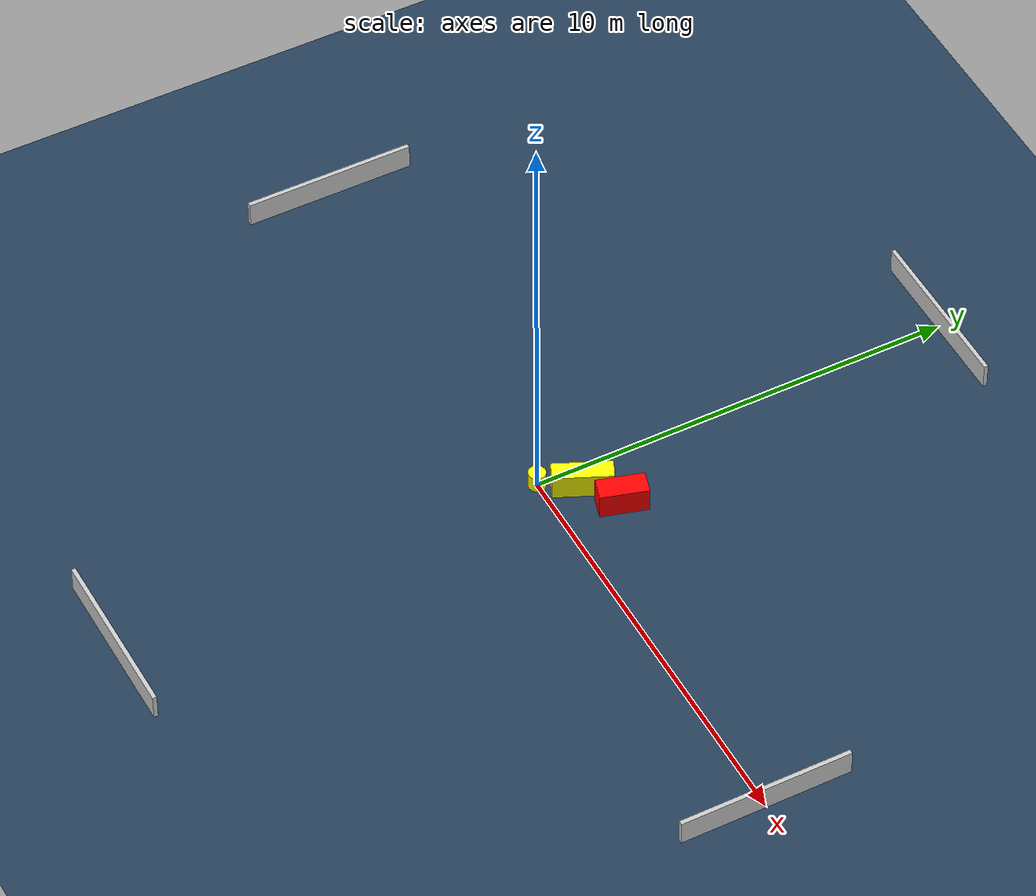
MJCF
<?xml version="1.0" ?>
<mujoco model="generated_environment">
  <option timestep="0.01" integrator="RK4" cone="elliptic"/>
  <default>
    <geom density="1"/>
  </default>
  <asset>
    <texture builtin="gradient" height="3072" name="skybox" rgb1="0.3 0.5 0.7" rgb2="0 0 0" type="skybox" width="512"/>
    <texture builtin="checker" height="300" name="groundplane" rgb1="0.2 0.3 0.4" rgb2="0.1 0.2 0.3" type="2d" width="300"/>
    <material name="groundplane" reflectance="0.2" texrepeat="5 5" texture="groundplane"/>
  </asset>
  <worldbody>
    <light dir="0 0 -1" directional="true" pos="0 0 1.5"/>
    <geom condim="3" friction="0.5 0.005 0.001" material="groundplane" name="floor" pos="0 0 0" size="0 0 0.05" type="plane"/>
    <body name="walls">
      <geom name="wall_1" condim="4" pos="-10.0 0.0 0.3" rgba="0.800000011920929 0.800000011920929 0.800000011920929 1.0" size="0.05 2.0 0.3" type="box"/>
      <geom name="wall_2" condim="4" pos="10.0 0.0 0.3" rgba="0.800000011920929 0.800000011920929 0.800000011920929 1.0" size="0.05 2.0 0.3" type="box"/>
      <geom name="wall_3" condim="4" pos="0.0 -10.0 0.3" rgba="0.800000011920929 0.800000011920929 0.800000011920929 1.0" size="2.0 0.05 0.3" type="box"/>
      <geom name="wall_4" condim="4" pos="0.0 10.0 0.3" rgba="0.800000011920929 0.800000011920929 0.800000011920929 1.0" size="2.0 0.05 0.3" type="box"/>
    </body>
    <body name="robot">
      <joint name="joint_x" type="slide" pos="0 0 0" axis="1 0 0"/>
      <joint name="joint_y" type="slide" pos="0 0 0" axis="0 1 0"/>
      <geom name="robot" type="cylinder" pos="0.0 0.0 0.2" size="0.2 0.2 0.0" mass="5.0" friction="1.0 0.005 0.0001" condim="4" rgba="1.0 1.0 0.0 1.0"/>
    </body>
    <body name="obstacle_1_movable">
      <geom name="obstacle_1_movable" condim="4" pos="0.5497372811585427 0.8139845686812516 0.3" euler="0 0 335.5962649253702" friction="0.0 0.005 0.001" rgba="1.0 1.0 0.0 1.0" size="0.22325916705859153 0.6796221460235018 0.3" type="box" mass="0.1"/>
      <joint type="free"/>
    </body>
    <body name="obstacle_2_static">
      <geom name="obstacle_2_static" condim="4" pos="1.3419376565635424 1.3521245900482424 0.3" euler="0 0 343.3874439213815" friction="0.0 0.005 0.001" rgba="1.0 0.0 0.0 1.0" size="0.26582536213494423 0.5505494212689864 0.3" type="box"/>
    </body>
  </worldbody>
  <actuator>
    <motor name="actuator_x" joint="joint_x" gear="1" ctrlrange="-1 1"/>
    <motor name="actuator_y" joint="joint_y" gear="1" ctrlrange="-1 1"/>
  </actuator>
</mujoco>
